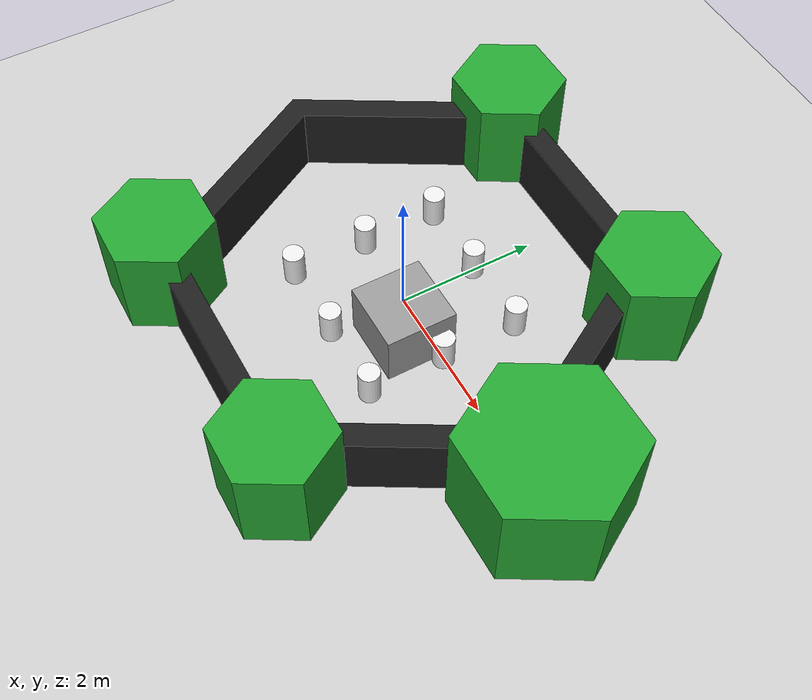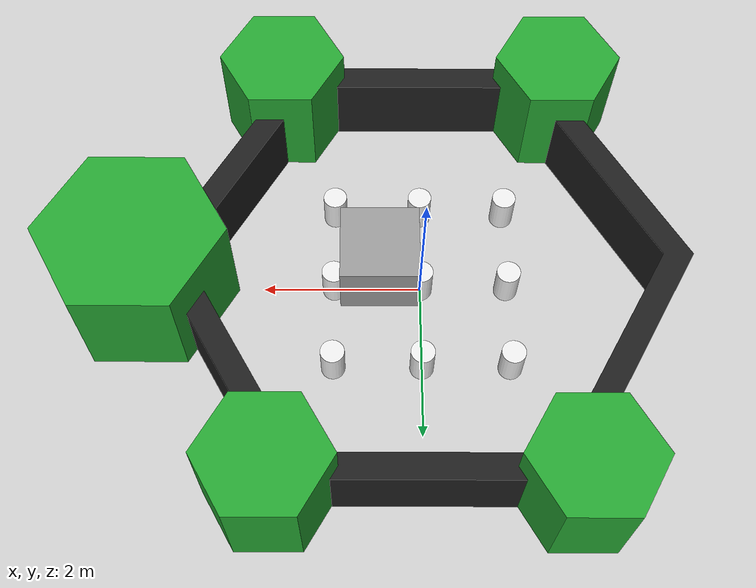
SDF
<sdf version="1.6">
 <world name="default">
  <light name="sun" type="directional">
   <pose>0 0 10 0 -0 0</pose>
   <diffuse>0.8 0.8 0.8 1</diffuse>
   <specular>0.2 0.2 0.2 1</specular>
   <attenuation>
    <range>1000</range>
    <constant>0.9</constant>
    <linear>0.01</linear>
    <quadratic>0.001</quadratic>
   </attenuation>
   <direction>-0.5 0.1 -0.9</direction>
  </light>
  <model name="ground_plane">
   <static>1</static>
   <link name="link">
    <collision name="collision">
     <geometry><plane><normal>0 0 1</normal><size>100 100</size></plane></geometry>
     <surface><friction><ode><mu>100</mu><mu2>50</mu2></ode></friction></surface>
    </collision>
    <visual name="visual">
     <cast_shadows>0</cast_shadows>
     <geometry><plane><normal>0 0 1</normal><size>100 100</size></plane></geometry>
     <material>
      <script><uri>file://media/materials/scripts/gazebo.material</uri><name>Gazebo/Grey</name></script>
     </material>
    </visual>
   </link>
  </model>
  <physics name="default_physics" default="0" type="ode">
   <real_time_update_rate>1000</real_time_update_rate>
   <max_step_size>0.001</max_step_size>
   <real_time_factor>1</real_time_factor>
   <ode>
    <solver>
     <type>quick</type>
     <iters>150</iters>
     <precon_iters>0</precon_iters>
     <sor>1.4</sor>
     <use_dynamic_moi_rescaling>1</use_dynamic_moi_rescaling>
    </solver>
    <constraints>
     <cfm>1e-05</cfm>
     <erp>0.2</erp>
     <contact_max_correcting_vel>2000</contact_max_correcting_vel>
     <contact_surface_layer>0.01</contact_surface_layer>
    </constraints>
   </ode>
  </physics>
  <model name="ros_symbol">
   <static>1</static>
   <link name="symbol">
    <collision name="one_one">
     <pose>-1.1 -1.1 0.25 0 -0 0</pose>
     <geometry><cylinder><radius>0.15</radius><length>0.5</length></cylinder></geometry>
    </collision>
    <visual name="one_one">
     <pose>-1.1 -1.1 0.25 0 -0 0</pose>
     <geometry><cylinder><radius>0.15</radius><length>0.5</length></cylinder></geometry>
     <material>
      <script><uri>file://media/materials/scripts/gazebo.material</uri><name>Gazebo/White</name></script>
     </material>
    </visual>
    <collision name="one_two">
     <pose>-1.1 0 0.25 0 -0 0</pose>
     <geometry><cylinder><radius>0.15</radius><length>0.5</length></cylinder></geometry>
    </collision>
    <visual name="one_two">
     <pose>-1.1 0 0.25 0 -0 0</pose>
     <geometry><cylinder><radius>0.15</radius><length>0.5</length></cylinder></geometry>
     <material>
      <script><uri>file://media/materials/scripts/gazebo.material</uri><name>Gazebo/White</name></script>
     </material>
    </visual>
    <collision name="one_three">
     <pose>-1.1 1.1 0.25 0 -0 0</pose>
     <geometry><cylinder><radius>0.15</radius><length>0.5</length></cylinder></geometry>
    </collision>
    <visual name="one_three">
     <pose>-1.1 1.1 0.25 0 -0 0</pose>
     <geometry><cylinder><radius>0.15</radius><length>0.5</length></cylinder></geometry>
     <material>
      <script><uri>file://media/materials/scripts/gazebo.material</uri><name>Gazebo/White</name></script>
     </material>
    </visual>
    <collision name="two_one">
     <pose>0 -1.1 0.25 0 -0 0</pose>
     <geometry><cylinder><radius>0.15</radius><length>0.5</length></cylinder></geometry>
    </collision>
    <visual name="two_one">
     <pose>0 -1.1 0.25 0 -0 0</pose>
     <geometry><cylinder><radius>0.15</radius><length>0.5</length></cylinder></geometry>
     <material>
      <script><uri>file://media/materials/scripts/gazebo.material</uri><name>Gazebo/White</name></script>
     </material>
    </visual>
    <collision name="two_two">
     <pose>0 0 0.25 0 -0 0</pose>
     <geometry><cylinder><radius>0.15</radius><length>0.5</length></cylinder></geometry>
    </collision>
    <visual name="two_two">
     <pose>0 0 0.25 0 -0 0</pose>
     <geometry><cylinder><radius>0.15</radius><length>0.5</length></cylinder></geometry>
     <material>
      <script><uri>file://media/materials/scripts/gazebo.material</uri><name>Gazebo/White</name></script>
     </material>
    </visual>
    <collision name="two_three">
     <pose>0 1.1 0.25 0 -0 0</pose>
     <geometry><cylinder><radius>0.15</radius><length>0.5</length></cylinder></geometry>
    </collision>
    <visual name="two_three">
     <pose>0 1.1 0.25 0 -0 0</pose>
     <geometry><cylinder><radius>0.15</radius><length>0.5</length></cylinder></geometry>
     <material>
      <script><uri>file://media/materials/scripts/gazebo.material</uri><name>Gazebo/White</name></script>
     </material>
    </visual>
    <collision name="three_one">
     <pose>1.1 -1.1 0.25 0 -0 0</pose>
     <geometry><cylinder><radius>0.15</radius><length>0.5</length></cylinder></geometry>
    </collision>
    <visual name="three_one">
     <pose>1.1 -1.1 0.25 0 -0 0</pose>
     <geometry><cylinder><radius>0.15</radius><length>0.5</length></cylinder></geometry>
     <material>
      <script><uri>file://media/materials/scripts/gazebo.material</uri><name>Gazebo/White</name></script>
     </material>
    </visual>
    <collision name="three_two">
     <pose>1.1 0 0.25 0 -0 0</pose>
     <geometry><cylinder><radius>0.15</radius><length>0.5</length></cylinder></geometry>
    </collision>
    <visual name="three_two">
     <pose>1.1 0 0.25 0 -0 0</pose>
     <geometry><cylinder><radius>0.15</radius><length>0.5</length></cylinder></geometry>
     <material>
      <script><uri>file://media/materials/scripts/gazebo.material</uri><name>Gazebo/White</name></script>
     </material>
    </visual>
    <collision name="three_three">
     <pose>1.1 1.1 0.25 0 -0 0</pose>
     <geometry><cylinder><radius>0.15</radius><length>0.5</length></cylinder></geometry>
    </collision>
    <visual name="three_three">
     <pose>1.1 1.1 0.25 0 -0 0</pose>
     <geometry><cylinder><radius>0.15</radius><length>0.5</length></cylinder></geometry>
     <material>
      <script><uri>file://media/materials/scripts/gazebo.material</uri><name>Gazebo/White</name></script>
     </material>
    </visual>
    <collision name="head">
     <pose>3.5 0 -0.5 0 -0 0</pose>
     <geometry>
      <mesh><uri>model://turtlebot3_world/meshes/hexagon.dae</uri><scale>0.8 0.8 0.8</scale></mesh>
     </geometry>
    </collision>
    <visual name="head">
     <pose>3.5 0 -0.5 0 -0 0</pose>
     <geometry>
      <mesh><uri>model://turtlebot3_world/meshes/hexagon.dae</uri><scale>0.8 0.8 0.8</scale></mesh>
     </geometry>
     <material>
      <script><uri>file://media/materials/scripts/gazebo.material</uri><name>Gazebo/Green</name></script>
     </material>
    </visual>
    <collision name="left_hand">
     <pose>1.8 2.7 0 0 -0 0</pose>
     <geometry>
      <mesh><uri>model://turtlebot3_world/meshes/hexagon.dae</uri><scale>0.55 0.55 0.55</scale></mesh>
     </geometry>
    </collision>
    <visual name="left_hand">
     <pose>1.8 2.7 0 0 -0 0</pose>
     <geometry>
      <mesh><uri>model://turtlebot3_world/meshes/hexagon.dae</uri><scale>0.55 0.55 0.55</scale></mesh>
     </geometry>
     <material>
      <script><uri>file://media/materials/scripts/gazebo.material</uri><name>Gazebo/Green</name></script>
     </material>
    </visual>
    <collision name="right_hand">
     <pose>1.8 -2.7 0 0 -0 0</pose>
     <geometry>
      <mesh><uri>model://turtlebot3_world/meshes/hexagon.dae</uri><scale>0.55 0.55 0.55</scale></mesh>
     </geometry>
    </collision>
    <visual name="right_hand">
     <pose>1.8 -2.7 0 0 -0 0</pose>
     <geometry>
      <mesh><uri>model://turtlebot3_world/meshes/hexagon.dae</uri><scale>0.55 0.55 0.55</scale></mesh>
     </geometry>
     <material>
      <script><uri>file://media/materials/scripts/gazebo.material</uri><name>Gazebo/Green</name></script>
     </material>
    </visual>
    <collision name="left_foot">
     <pose>-1.8 2.7 0 0 -0 0</pose>
     <geometry>
      <mesh><uri>model://turtlebot3_world/meshes/hexagon.dae</uri><scale>0.55 0.55 0.55</scale></mesh>
     </geometry>
    </collision>
    <visual name="left_foot">
     <pose>-1.8 2.7 0 0 -0 0</pose>
     <geometry>
      <mesh><uri>model://turtlebot3_world/meshes/hexagon.dae</uri><scale>0.55 0.55 0.55</scale></mesh>
     </geometry>
     <material>
      <script><uri>file://media/materials/scripts/gazebo.material</uri><name>Gazebo/Green</name></script>
     </material>
    </visual>
    <collision name="right_foot">
     <pose>-1.8 -2.7 0 0 -0 0</pose>
     <geometry>
      <mesh><uri>model://turtlebot3_world/meshes/hexagon.dae</uri><scale>0.55 0.55 0.55</scale></mesh>
     </geometry>
    </collision>
    <visual name="right_foot">
     <pose>-1.8 -2.7 0 0 -0 0</pose>
     <geometry>
      <mesh><uri>model://turtlebot3_world/meshes/hexagon.dae</uri><scale>0.55 0.55 0.55</scale></mesh>
     </geometry>
     <material>
      <script><uri>file://media/materials/scripts/gazebo.material</uri><name>Gazebo/Green</name></script>
     </material>
    </visual>
    <collision name="body">
     <pose>0 0 -0.3 0 0 -1.5708</pose>
     <geometry>
      <mesh><uri>model://turtlebot3_world/meshes/wall.dae</uri><scale>0.25 0.25 0.25</scale></mesh>
     </geometry>
    </collision>
    <visual name="body">
     <pose>0 0 -0.3 0 0 -1.5708</pose>
     <geometry>
      <mesh><uri>model://turtlebot3_world/meshes/wall.dae</uri><scale>0.25 0.25 0.25</scale></mesh>
     </geometry>
     <material>
      <script><uri>file://media/materials/scripts/gazebo.material</uri><name>Gazebo/FlatBlack</name></script>
     </material>
    </visual>
   </link>
  </model>
  <scene><ambient>0.4 0.4 0.4 1</ambient><background>0.7 0.7 0.7 1</background><shadows>1</shadows></scene>
  <gravity>0 0 -9.8</gravity>
  <magnetic_field>6e-06 2.3e-05 -4.2e-05</magnetic_field>
  <atmosphere type="adiabatic"/>
  <audio><device>default</device></audio>
  <spherical_coordinates>
   <surface_model>EARTH_WGS84</surface_model>
   <latitude_deg>0</latitude_deg>
   <longitude_deg>0</longitude_deg>
   <elevation>0</elevation>
   <heading_deg>0</heading_deg>
  </spherical_coordinates>
  <model name="unit_box">
   <pose>0.521005 -0.279014 0.271819 0 -0 0.002922</pose>
   <link name="link">
    <inertial>
     <mass>1</mass>
     <inertia>
      <ixx>0.166667</ixx>
      <ixy>0</ixy>
      <ixz>0</ixz>
      <iyy>0.166667</iyy>
      <iyz>0</iyz>
      <izz>0.166667</izz>
     </inertia>
    </inertial>
    <collision name="collision"><geometry><box><size>1 1 0.999998</size></box></geometry></collision>
    <visual name="visual">
     <geometry><box><size>1 1 0.999998</size></box></geometry>
     <material>
      <script><name>Gazebo/Grey</name><uri>file://media/materials/scripts/gazebo.material</uri></script>
     </material>
    </visual>
   </link>
  </model>
 </world>
</sdf>
